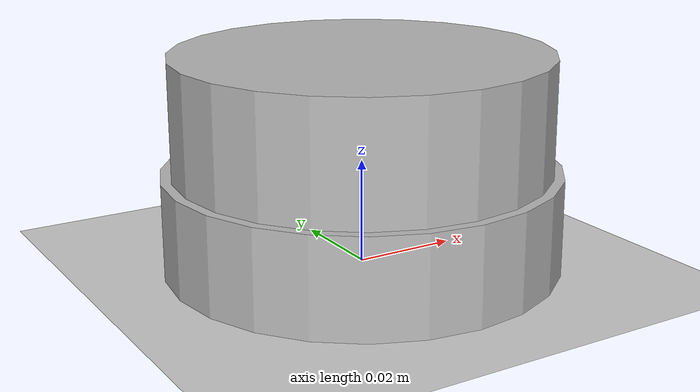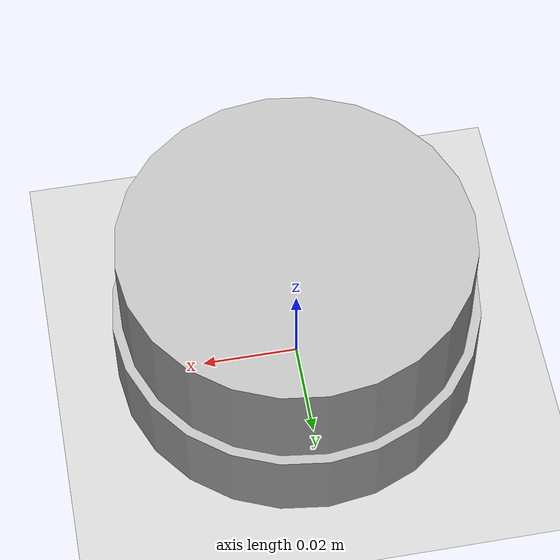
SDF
<?xml version="1.0" ?>
<sdf version="1.5">
  <world name="default">

    <include>
      <uri>model://ground_plane</uri>
    </include>

    <include>
      <uri>model://sun</uri>
    </include>
    <model name="rplidar_a2">
      <link name="base">

         <pose>0 0 0.0093 0 0 0</pose>
         <inertial>
            <mass>0.24</mass>
            <inertia>
             <ixx>0.0000935592</ixx>
             <iyy>0.0000935592</iyy>
             <izz>0.0001732800</izz>
             <ixy>0</ixy>
             <ixz>0</ixz>
             <iyz>0</iyz>
            </inertia>
         </inertial>

         <collision name="base_collision">
          <geometry>
            <cylinder>
              <radius>0.038</radius>
              <length>0.0186</length>
            </cylinder>
          </geometry>
         </collision>

         <visual name="base_visual">
          <geometry>
            <cylinder>
              <radius>0.038</radius>
              <length>0.0186</length>
            </cylinder>
          </geometry>
         </visual>
      </link>

      <link name="top">

         <pose>0 0 0.0297 0 0 0</pose>
         <inertial>
            <mass>0.1</mass>
            <inertia>
             <ixx>0.000036507</ixx>
             <iyy>0.000036507</iyy>
             <izz>0.000064800</izz>
             <ixy>0</ixy>
             <ixz>0</ixz>
             <iyz>0</iyz>
            </inertia>
         </inertial>
         <collision name="top_collision">
           <geometry>
             <cylinder>
                <radius>0.036</radius>
                <length>0.0222</length>
             </cylinder>
           </geometry>
         </collision>

         <visual name="top_visual">
           <geometry>
             <cylinder>
                <radius>0.036</radius>
                <length>0.0222</length>
             </cylinder>
           </geometry>
         </visual>

      </link>
      <joint type="revolute" name="joint">

        <pose>0 0 -0.0111 0 0 0</pose>
        <parent>base</parent>
        <child>top</child>
        <axis>
          <xyz>0 0 1</xyz>

          <limit>
            <lower>-10000000000000000</lower>
            <upper>10000000000000000</upper>

          </limit>
        </axis>
      </joint>

    </model>

  </world>

</sdf>
